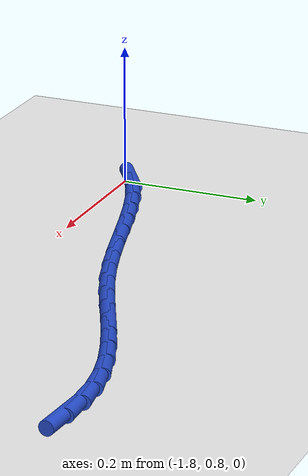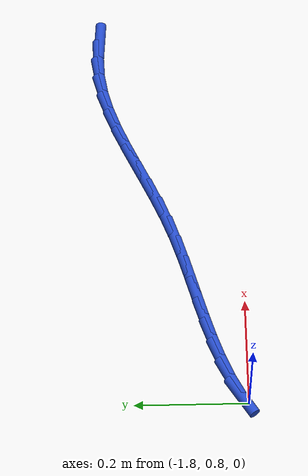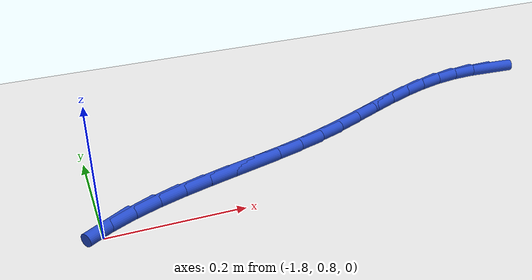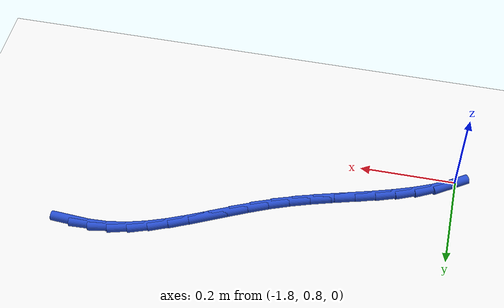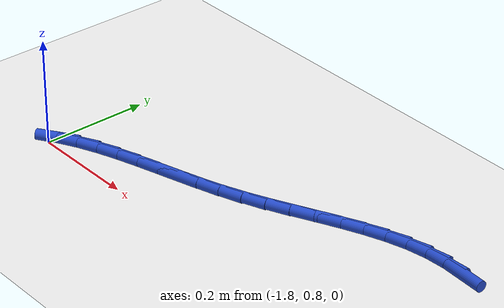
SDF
<sdf version="1.6">
 <world name="default">
  <model name="ground_plane">
   <static>1</static>
   <link name="link">
    <collision name="collision">
     <geometry><plane><normal>0 0 1</normal><size>100 100</size></plane></geometry>
     <surface><friction><ode><mu>100</mu><mu2>50</mu2></ode></friction></surface>
    </collision>
    <visual name="visual">
     <cast_shadows>0</cast_shadows>
     <geometry><plane><normal>0 0 1</normal><size>100 100</size></plane></geometry>
     <material>
      <script><uri>file://media/materials/scripts/gazebo.material</uri><name>Gazebo/WhiteGlow</name></script>
     </material>
    </visual>
   </link>
  </model>
  <model name="line">
   <link name="link_40">
    <pose>-1.0394554861758254 1.057950642064506 0.01 0 1.57 -0.060113959469717274</pose>
    <collision name="collision">
     <geometry><cylinder><radius>0.01</radius><length>0.08</length></cylinder></geometry>
    </collision>
    <visual name="visual">
     <material>
      <script><name>Gazebo/Blue</name><uri>file://media/materials/scripts/gazebo.material</uri></script>
     </material>
     <geometry><cylinder><radius>0.01</radius><length>0.08</length></cylinder></geometry>
    </visual>
   </link>
   <link name="link_41">
    <pose>-1.0791080713591603 1.0603371914042226 0.01 0 1.57 0.04682995415215745</pose>
    <collision name="collision">
     <geometry><cylinder><radius>0.01</radius><length>0.08</length></cylinder></geometry>
    </collision>
    <visual name="visual">
     <material>
      <script><name>Gazebo/Blue</name><uri>file://media/materials/scripts/gazebo.material</uri></script>
     </material>
     <geometry><cylinder><radius>0.01</radius><length>0.08</length></cylinder></geometry>
    </visual>
   </link>
   <link name="link_42">
    <pose>-1.118337858254652 1.0584987181346814 0.01 0 1.57 0.1668381147046109</pose>
    <collision name="collision">
     <geometry><cylinder><radius>0.01</radius><length>0.08</length></cylinder></geometry>
    </collision>
    <visual name="visual">
     <material>
      <script><name>Gazebo/Blue</name><uri>file://media/materials/scripts/gazebo.material</uri></script>
     </material>
     <geometry><cylinder><radius>0.01</radius><length>0.08</length></cylinder></geometry>
    </visual>
   </link>
   <link name="link_43">
    <pose>-1.1571908975851775 1.0519557294137283 0.01 0 1.57 0.2693754659259627</pose>
    <collision name="collision">
     <geometry><cylinder><radius>0.01</radius><length>0.08</length></cylinder></geometry>
    </collision>
    <visual name="visual">
     <material>
      <script><name>Gazebo/Blue</name><uri>file://media/materials/scripts/gazebo.material</uri></script>
     </material>
     <geometry><cylinder><radius>0.01</radius><length>0.08</length></cylinder></geometry>
    </visual>
   </link>
   <link name="link_44">
    <pose>-1.1957916204412364 1.0412986148104966 0.01 0 1.57 0.3469685080968289</pose>
    <collision name="collision">
     <geometry><cylinder><radius>0.01</radius><length>0.08</length></cylinder></geometry>
    </collision>
    <visual name="visual">
     <material>
      <script><name>Gazebo/Blue</name><uri>file://media/materials/scripts/gazebo.material</uri></script>
     </material>
     <geometry><cylinder><radius>0.01</radius><length>0.08</length></cylinder></geometry>
    </visual>
   </link>
   <link name="link_45">
    <pose>-1.234283670298164 1.0273800105923496 0.01 0 1.57 0.40084733627559416</pose>
    <collision name="collision">
     <geometry><cylinder><radius>0.01</radius><length>0.08</length></cylinder></geometry>
    </collision>
    <visual name="visual">
     <material>
      <script><name>Gazebo/Blue</name><uri>file://media/materials/scripts/gazebo.material</uri></script>
     </material>
     <geometry><cylinder><radius>0.01</radius><length>0.08</length></cylinder></geometry>
    </visual>
   </link>
   <link name="link_46">
    <pose>-1.272810690631298 1.0110525530266525 0.01 0 1.57 0.432823786957801</pose>
    <collision name="collision">
     <geometry><cylinder><radius>0.01</radius><length>0.08</length></cylinder></geometry>
    </collision>
    <visual name="visual">
     <material>
      <script><name>Gazebo/Blue</name><uri>file://media/materials/scripts/gazebo.material</uri></script>
     </material>
     <geometry><cylinder><radius>0.01</radius><length>0.08</length></cylinder></geometry>
    </visual>
   </link>
   <link name="link_47">
    <pose>-1.311516324915974 0.9931688783807696 0.01 0 1.57 0.4444723672704669</pose>
    <collision name="collision">
     <geometry><cylinder><radius>0.01</radius><length>0.08</length></cylinder></geometry>
    </collision>
    <visual name="visual">
     <material>
      <script><name>Gazebo/Blue</name><uri>file://media/materials/scripts/gazebo.material</uri></script>
     </material>
     <geometry><cylinder><radius>0.01</radius><length>0.08</length></cylinder></geometry>
    </visual>
   </link>
   <link name="link_48">
    <pose>-1.3505442166275285 0.974581622922065 0.01 0 1.57 0.43678856787306714</pose>
    <collision name="collision">
     <geometry><cylinder><radius>0.01</radius><length>0.08</length></cylinder></geometry>
    </collision>
    <visual name="visual">
     <material>
      <script><name>Gazebo/Blue</name><uri>file://media/materials/scripts/gazebo.material</uri></script>
     </material>
     <geometry><cylinder><radius>0.01</radius><length>0.08</length></cylinder></geometry>
    </visual>
   </link>
   <link name="link_49">
    <pose>-1.390038009241298 0.9561434229179036 0.01 0 1.57 0.41013310359204996</pose>
    <collision name="collision">
     <geometry><cylinder><radius>0.01</radius><length>0.08</length></cylinder></geometry>
    </collision>
    <visual name="visual">
     <material>
      <script><name>Gazebo/Blue</name><uri>file://media/materials/scripts/gazebo.material</uri></script>
     </material>
     <geometry><cylinder><radius>0.01</radius><length>0.08</length></cylinder></geometry>
    </visual>
   </link>
   <link name="link_50">
    <pose>-1.4301413462326187 0.9387069146356495 0.01 0 1.57 0.36523144877931446</pose>
    <collision name="collision">
     <geometry><cylinder><radius>0.01</radius><length>0.08</length></cylinder></geometry>
    </collision>
    <visual name="visual">
     <material>
      <script><name>Gazebo/Blue</name><uri>file://media/materials/scripts/gazebo.material</uri></script>
     </material>
     <geometry><cylinder><radius>0.01</radius><length>0.08</length></cylinder></geometry>
    </visual>
   </link>
   <link name="link_51">
    <pose>-1.4709856224677897 0.9230885810543774 0.01 0 1.57 0.3196486616883416</pose>
    <collision name="collision">
     <geometry><cylinder><radius>0.01</radius><length>0.08</length></cylinder></geometry>
    </collision>
    <visual name="visual">
     <material>
      <script><name>Gazebo/Blue</name><uri>file://media/materials/scripts/gazebo.material</uri></script>
     </material>
     <geometry><cylinder><radius>0.01</radius><length>0.08</length></cylinder></geometry>
    </visual>
   </link>
   <link name="link_52">
    <pose>-1.5124510610120458 0.9093635404393231 0.01 0 1.57 0.2899536279049206</pose>
    <collision name="collision">
     <geometry><cylinder><radius>0.01</radius><length>0.08</length></cylinder></geometry>
    </collision>
    <visual name="visual">
     <material>
      <script><name>Gazebo/Blue</name><uri>file://media/materials/scripts/gazebo.material</uri></script>
     </material>
     <geometry><cylinder><radius>0.01</radius><length>0.08</length></cylinder></geometry>
    </visual>
   </link>
   <link name="link_53">
    <pose>-1.5541825952830777 0.896912424487231 0.01 0 1.57 0.27670096728061605</pose>
    <collision name="collision">
     <geometry><cylinder><radius>0.01</radius><length>0.08</length></cylinder></geometry>
    </collision>
    <visual name="visual">
     <material>
      <script><name>Gazebo/Blue</name><uri>file://media/materials/scripts/gazebo.material</uri></script>
     </material>
     <geometry><cylinder><radius>0.01</radius><length>0.08</length></cylinder></geometry>
    </visual>
   </link>
   <link name="link_54">
    <pose>-1.595816090769394 0.8850890997775329 0.01 0 1.57 0.2800600114164097</pose>
    <collision name="collision">
     <geometry><cylinder><radius>0.01</radius><length>0.08</length></cylinder></geometry>
    </collision>
    <visual name="visual">
     <material>
      <script><name>Gazebo/Blue</name><uri>file://media/materials/scripts/gazebo.material</uri></script>
     </material>
     <geometry><cylinder><radius>0.01</radius><length>0.08</length></cylinder></geometry>
    </visual>
   </link>
   <link name="link_55">
    <pose>-1.636987412959505 0.87324743288966 0.01 0 1.57 0.30058730874194656</pose>
    <collision name="collision">
     <geometry><cylinder><radius>0.01</radius><length>0.08</length></cylinder></geometry>
    </collision>
    <visual name="visual">
     <material>
      <script><name>Gazebo/Blue</name><uri>file://media/materials/scripts/gazebo.material</uri></script>
     </material>
     <geometry><cylinder><radius>0.01</radius><length>0.08</length></cylinder></geometry>
    </visual>
   </link>
   <link name="link_56">
    <pose>-1.6773324273419223 0.8607412904030437 0.01 0 1.57 0.3392356269195323</pose>
    <collision name="collision">
     <geometry><cylinder><radius>0.01</radius><length>0.08</length></cylinder></geometry>
    </collision>
    <visual name="visual">
     <material>
      <script><name>Gazebo/Blue</name><uri>file://media/materials/scripts/gazebo.material</uri></script>
     </material>
     <geometry><cylinder><radius>0.01</radius><length>0.08</length></cylinder></geometry>
    </visual>
   </link>
   <link name="link_57">
    <pose>-1.7164869994051548 0.8469245388971158 0.01 0 1.57 0.39720958319567645</pose>
    <collision name="collision">
     <geometry><cylinder><radius>0.01</radius><length>0.08</length></cylinder></geometry>
    </collision>
    <visual name="visual">
     <material>
      <script><name>Gazebo/Blue</name><uri>file://media/materials/scripts/gazebo.material</uri></script>
     </material>
     <geometry><cylinder><radius>0.01</radius><length>0.08</length></cylinder></geometry>
    </visual>
   </link>
   <link name="link_58">
    <pose>-1.7540869946377127 0.831151044951307 0.01 0 1.57 0.47558673866967077</pose>
    <collision name="collision">
     <geometry><cylinder><radius>0.01</radius><length>0.08</length></cylinder></geometry>
    </collision>
    <visual name="visual">
     <material>
      <script><name>Gazebo/Blue</name><uri>file://media/materials/scripts/gazebo.material</uri></script>
     </material>
     <geometry><cylinder><radius>0.01</radius><length>0.08</length></cylinder></geometry>
    </visual>
   </link>
   <link name="link_59">
    <pose>-1.7897682785281068 0.8127746751450495 0.01 0 1.57 0.5746134322527496</pose>
    <collision name="collision">
     <geometry><cylinder><radius>0.01</radius><length>0.08</length></cylinder></geometry>
    </collision>
    <visual name="visual">
     <material>
      <script><name>Gazebo/Blue</name><uri>file://media/materials/scripts/gazebo.material</uri></script>
     </material>
     <geometry><cylinder><radius>0.01</radius><length>0.08</length></cylinder></geometry>
    </visual>
   </link>
  </model>
 </world>
</sdf>
